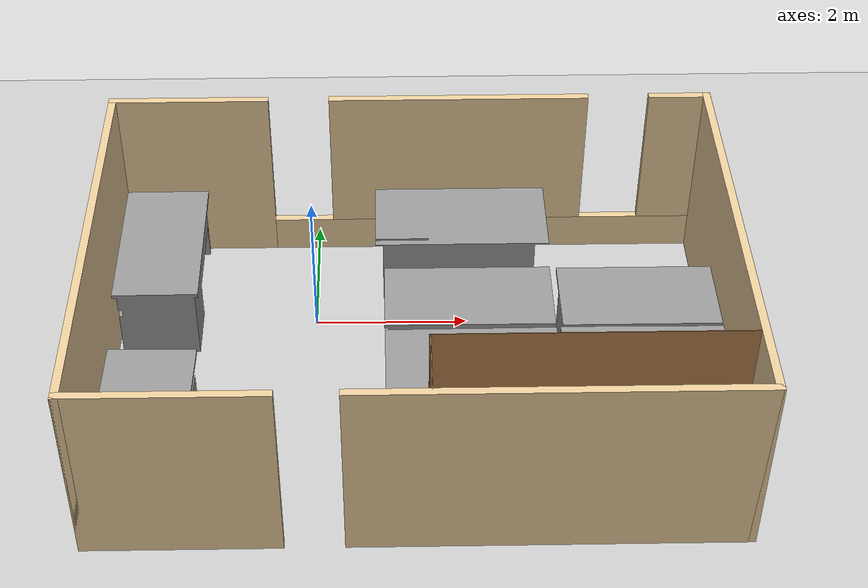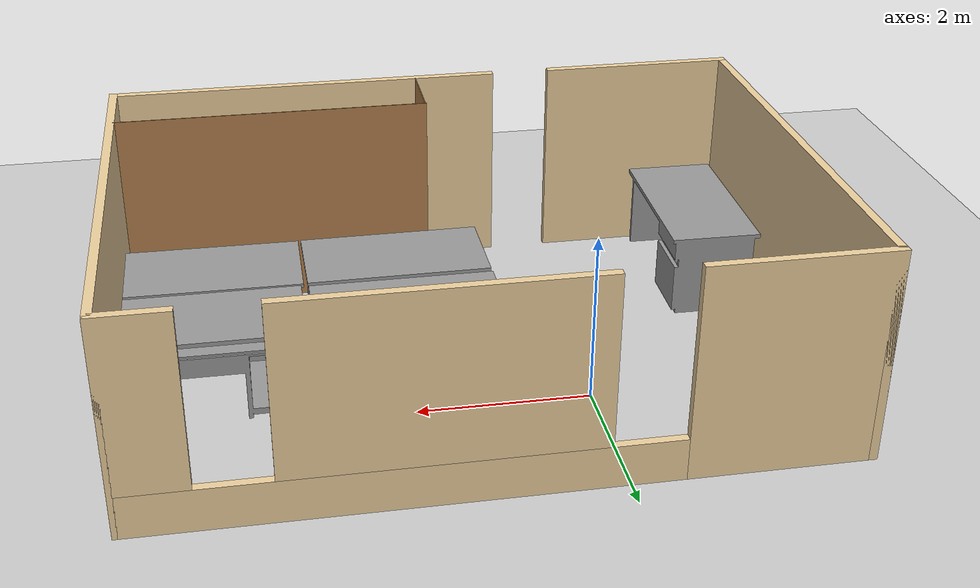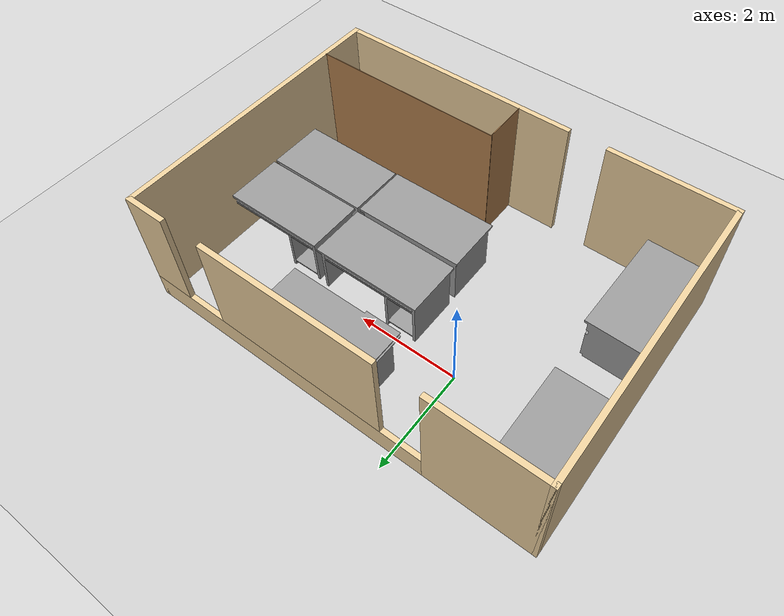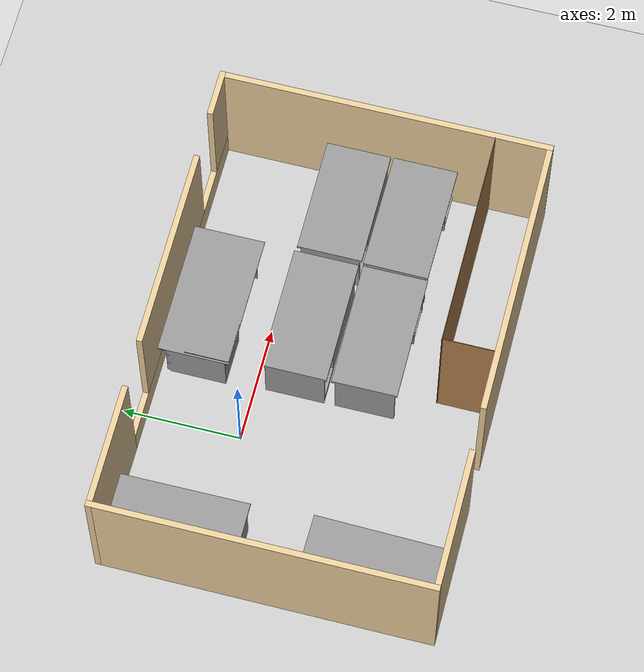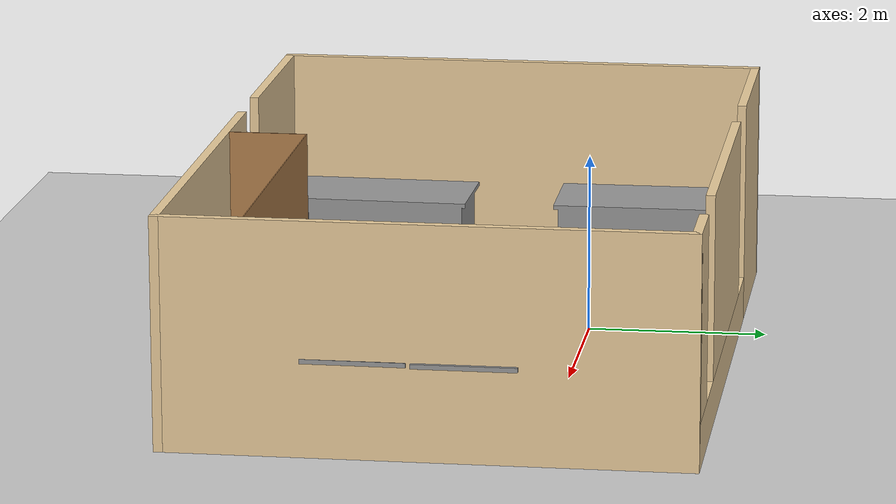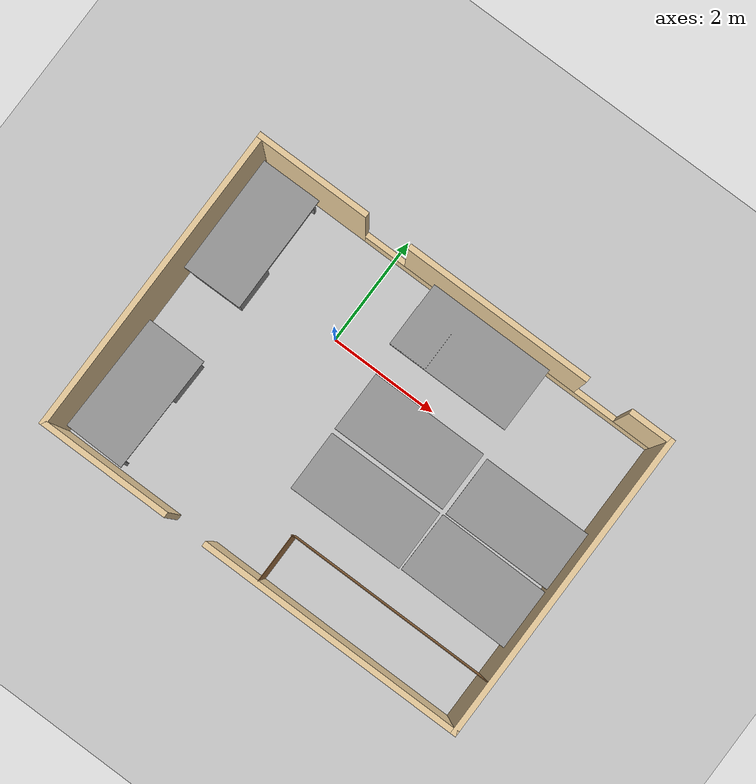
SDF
<sdf version="1.6">
 <world name="default">
  <light name="sun" type="directional">
   <pose>0 0 10 0 -0 0</pose>
   <diffuse>0.8 0.8 0.8 1</diffuse>
   <specular>0.1 0.1 0.1 1</specular>
   <attenuation>
    <range>1000</range>
    <constant>0.9</constant>
    <linear>0.01</linear>
    <quadratic>0.001</quadratic>
   </attenuation>
   <direction>-0.5 0.5 -1</direction>
  </light>
  <model name="ground_plane">
   <static>1</static>
   <link name="link">
    <collision name="collision">
     <geometry><plane><normal>0 0 1</normal><size>100 100</size></plane></geometry>
     <surface><friction><ode><mu>100</mu><mu2>50</mu2></ode></friction></surface>
    </collision>
    <visual name="visual">
     <cast_shadows>0</cast_shadows>
     <geometry><plane><normal>0 0 1</normal><size>100 100</size></plane></geometry>
     <material>
      <script><uri>file://media/materials/scripts/gazebo.material</uri><name>Gazebo/Grey</name></script>
     </material>
    </visual>
   </link>
  </model>
  <gravity>0 0 -9.8</gravity>
  <magnetic_field>6e-06 2.3e-05 -4.2e-05</magnetic_field>
  <atmosphere type="adiabatic"/>
  <physics name="default_physics" default="0" type="ode">
   <max_step_size>0.001</max_step_size>
   <real_time_factor>1</real_time_factor>
   <real_time_update_rate>1000</real_time_update_rate>
  </physics>
  <scene><ambient>0.4 0.4 0.4 1</ambient><background>0.7 0.7 0.7 1</background><shadows>1</shadows></scene>
  <spherical_coordinates>
   <surface_model>EARTH_WGS84</surface_model>
   <latitude_deg>0</latitude_deg>
   <longitude_deg>0</longitude_deg>
   <elevation>0</elevation>
   <heading_deg>0</heading_deg>
  </spherical_coordinates>
  <model name="Room">
   <pose>1.28029 -1.1137 0 0 -0 0</pose>
   <link name="Wall_20">
    <pose>-0 2.765 0 0 -0 0</pose>
    <visual name="Wall_20_Visual_0">
     <pose>-2.925 0 1.25 0 -0 0</pose>
     <geometry><box><size>2.1 0.1 2.5</size></box></geometry>
     <material>
      <script><uri>file://media/materials/scripts/gazebo.material</uri><name>Gazebo/Grey</name></script>
      <ambient>0.921569 0.807843 0.615686 1</ambient>
     </material>
     <meta><layer>0</layer></meta>
    </visual>
    <collision name="Wall_20_Collision_0">
     <geometry><box><size>2.1 0.1 2.5</size></box></geometry>
     <pose>-2.925 0 1.25 0 -0 0</pose>
    </collision>
    <visual name="Wall_20_Visual_1">
     <pose>1.05 0 0.25 0 -0 0</pose>
     <geometry><box><size>5.85 0.1 0.5</size></box></geometry>
     <material>
      <script><uri>file://media/materials/scripts/gazebo.material</uri><name>Gazebo/Grey</name></script>
      <ambient>0.921569 0.807843 0.615686 1</ambient>
     </material>
     <meta><layer>0</layer></meta>
    </visual>
    <collision name="Wall_20_Collision_1">
     <geometry><box><size>5.85 0.1 0.5</size></box></geometry>
     <pose>1.05 0 0.25 0 -0 0</pose>
    </collision>
    <visual name="Wall_20_Visual_2">
     <pose>0.64 0 1.5 0 -0 0</pose>
     <geometry><box><size>3.43 0.1 2</size></box></geometry>
     <material>
      <script><uri>file://media/materials/scripts/gazebo.material</uri><name>Gazebo/Grey</name></script>
      <ambient>0.921569 0.807843 0.615686 1</ambient>
     </material>
     <meta><layer>0</layer></meta>
    </visual>
    <collision name="Wall_20_Collision_2">
     <geometry><box><size>3.43 0.1 2</size></box></geometry>
     <pose>0.64 0 1.5 0 -0 0</pose>
    </collision>
    <visual name="Wall_20_Visual_3">
     <pose>3.565 0 1.5 0 -0 0</pose>
     <geometry><box><size>0.82 0.1 2</size></box></geometry>
     <material>
      <script><uri>file://media/materials/scripts/gazebo.material</uri><name>Gazebo/Grey</name></script>
      <ambient>0.921569 0.807843 0.615686 1</ambient>
     </material>
     <meta><layer>0</layer></meta>
    </visual>
    <collision name="Wall_20_Collision_3">
     <geometry><box><size>0.82 0.1 2</size></box></geometry>
     <pose>3.565 0 1.5 0 -0 0</pose>
    </collision>
   </link>
   <link name="Wall_21">
    <collision name="Wall_21_Collision">
     <geometry><box><size>5.63 0.1 2.5</size></box></geometry>
     <pose>0 0 1.25 0 -0 0</pose>
    </collision>
    <visual name="Wall_21_Visual">
     <pose>0 0 1.25 0 -0 0</pose>
     <geometry><box><size>5.63 0.1 2.5</size></box></geometry>
     <material>
      <script><uri>file://media/materials/scripts/gazebo.material</uri><name>Gazebo/Grey</name></script>
      <ambient>0.921569 0.807843 0.615686 1</ambient>
     </material>
     <meta><layer>0</layer></meta>
    </visual>
    <pose>3.925 0 0 0 -0 -1.5708</pose>
   </link>
   <link name="Wall_23">
    <collision name="Wall_23_Collision">
     <geometry><box><size>5.63 0.1 2.5</size></box></geometry>
     <pose>0 0 1.25 0 -0 0</pose>
    </collision>
    <visual name="Wall_23_Visual">
     <pose>0 0 1.25 0 -0 0</pose>
     <geometry><box><size>5.63 0.1 2.5</size></box></geometry>
     <material>
      <script><uri>file://media/materials/scripts/gazebo.material</uri><name>Gazebo/Grey</name></script>
      <ambient>0.921569 0.807843 0.615686 1</ambient>
     </material>
     <meta><layer>0</layer></meta>
    </visual>
    <pose>-3.925 0 0 0 -0 -1.5708</pose>
   </link>
   <link name="Wall_25">
    <pose>-0 -2.765 0 0 -0 0</pose>
    <visual name="Wall_25_Visual_0">
     <pose>-2.77256 0 1.25 0 -0 0</pose>
     <geometry><box><size>2.40488 0.1 2.5</size></box></geometry>
     <material>
      <script><uri>file://media/materials/scripts/gazebo.material</uri><name>Gazebo/Grey</name></script>
      <ambient>0.921569 0.807843 0.615686 1</ambient>
     </material>
     <meta><layer>0</layer></meta>
    </visual>
    <collision name="Wall_25_Collision_0">
     <geometry><box><size>2.40488 0.1 2.5</size></box></geometry>
     <pose>-2.77256 0 1.25 0 -0 0</pose>
    </collision>
    <visual name="Wall_25_Visual_1">
     <pose>1.56244 0 1.25 0 -0 0</pose>
     <geometry><box><size>4.82512 0.1 2.5</size></box></geometry>
     <material>
      <script><uri>file://media/materials/scripts/gazebo.material</uri><name>Gazebo/Grey</name></script>
      <ambient>0.921569 0.807843 0.615686 1</ambient>
     </material>
     <meta><layer>0</layer></meta>
    </visual>
    <collision name="Wall_25_Collision_1">
     <geometry><box><size>4.82512 0.1 2.5</size></box></geometry>
     <pose>1.56244 0 1.25 0 -0 0</pose>
    </collision>
   </link>
   <link name="Wall_45">
    <collision name="Wall_45_Collision">
     <geometry><box><size>3.76 0.01 2.5</size></box></geometry>
     <pose>0 0 1.25 0 -0 0</pose>
    </collision>
    <visual name="Wall_45_Visual">
     <pose>0 0 1.25 0 -0 0</pose>
     <geometry><box><size>3.76 0.01 2.5</size></box></geometry>
     <material>
      <script><uri>file://media/materials/scripts/gazebo.material</uri><name>Gazebo/Wood</name></script>
      <ambient>1 1 1 1</ambient>
     </material>
     <meta><layer>0</layer></meta>
    </visual>
    <pose>2.02 -1.857 0 0 -0 3.14159</pose>
   </link>
   <link name="Wall_48">
    <collision name="Wall_48_Collision">
     <geometry><box><size>0.87 0.01 2.5</size></box></geometry>
     <pose>0 0 1.25 0 -0 0</pose>
    </collision>
    <visual name="Wall_48_Visual">
     <pose>0 0 1.25 0 -0 0</pose>
     <geometry><box><size>0.87 0.01 2.5</size></box></geometry>
     <material>
      <script><uri>file://media/materials/scripts/gazebo.material</uri><name>Gazebo/Wood</name></script>
      <ambient>1 1 1 1</ambient>
     </material>
     <meta><layer>0</layer></meta>
    </visual>
    <pose>0.156 -2.305 0 0 -0 1.5708</pose>
   </link>
   <static>1</static>
  </model>
  <model name="table23">
   <link name="link_0">
    <inertial>
     <mass>1</mass>
     <inertia>
      <ixx>0.166667</ixx>
      <ixy>0</ixy>
      <ixz>0</ixz>
      <iyy>0.166667</iyy>
      <iyz>0</iyz>
      <izz>0.166667</izz>
     </inertia>
    </inertial>
    <pose>-4e-06 -0 0 0 -0 0</pose>
    <visual name="visual">
     <geometry>
      <mesh><uri>model://table_with_door/meshes/table_with_door.stl</uri><scale>0.05 0.05 0.05</scale></mesh>
     </geometry>
     <material>
      <lighting>1</lighting>
      <script><uri>file://media/materials/scripts/gazebo.material</uri><name>Gazebo/Grey</name></script>
     </material>
    </visual>
    <collision name="collision">
     <geometry>
      <mesh><uri>model://table_with_door/meshes/table_with_door.stl</uri><scale>0.05 0.05 0.05</scale></mesh>
     </geometry>
     <surface>
      <friction>
       <ode><mu>1</mu><mu2>1</mu2><fdir1>0 0 0</fdir1><slip1>0</slip1><slip2>0</slip2></ode>
       <torsional>
        <coefficient>1</coefficient>
        <patch_radius>0</patch_radius>
        <surface_radius>0</surface_radius>
        <use_patch_radius>1</use_patch_radius>
        <ode><slip>0</slip></ode>
       </torsional>
      </friction>
      <bounce><restitution_coefficient>0</restitution_coefficient><threshold>1e+06</threshold></bounce>
      <contact>
       <collide_without_contact>0</collide_without_contact>
       <collide_without_contact_bitmask>1</collide_without_contact_bitmask>
       <collide_bitmask>1</collide_bitmask>
       <ode>
        <soft_cfm>0</soft_cfm>
        <soft_erp>0.2</soft_erp>
        <kp>1e+13</kp>
        <kd>1</kd>
        <max_vel>0.01</max_vel>
        <min_depth>0</min_depth>
       </ode>
       <bullet>
        <split_impulse>1</split_impulse>
        <split_impulse_penetration_threshold>-0.01</split_impulse_penetration_threshold>
        <soft_cfm>0</soft_cfm>
        <soft_erp>0.2</soft_erp>
        <kp>1e+13</kp>
        <kd>1</kd>
       </bullet>
      </contact>
     </surface>
    </collision>
   </link>
   <static>0</static>
   <pose>-2.45438 -1.64797 0 0 0 -1.58818</pose>
  </model>
  <model name="table23_0">
   <link name="link_0">
    <inertial>
     <mass>1</mass>
     <inertia>
      <ixx>0.166667</ixx>
      <ixy>0</ixy>
      <ixz>0</ixz>
      <iyy>0.166667</iyy>
      <iyz>0</iyz>
      <izz>0.166667</izz>
     </inertia>
    </inertial>
    <pose>-4e-06 -0 0 0 -0 0</pose>
    <visual name="visual">
     <geometry>
      <mesh><uri>model://table_with_door/meshes/table_with_door.stl</uri><scale>0.05 0.05 0.05</scale></mesh>
     </geometry>
     <material>
      <lighting>1</lighting>
      <script><uri>file://media/materials/scripts/gazebo.material</uri><name>Gazebo/Grey</name></script>
     </material>
    </visual>
    <collision name="collision">
     <geometry>
      <mesh><uri>model://table_with_door/meshes/table_with_door.stl</uri><scale>0.05 0.05 0.05</scale></mesh>
     </geometry>
     <surface>
      <friction>
       <ode><mu>1</mu><mu2>1</mu2><fdir1>0 0 0</fdir1><slip1>0</slip1><slip2>0</slip2></ode>
       <torsional>
        <coefficient>1</coefficient>
        <patch_radius>0</patch_radius>
        <surface_radius>0</surface_radius>
        <use_patch_radius>1</use_patch_radius>
        <ode><slip>0</slip></ode>
       </torsional>
      </friction>
      <bounce><restitution_coefficient>0</restitution_coefficient><threshold>1e+06</threshold></bounce>
      <contact>
       <collide_without_contact>0</collide_without_contact>
       <collide_without_contact_bitmask>1</collide_without_contact_bitmask>
       <collide_bitmask>1</collide_bitmask>
       <ode>
        <soft_cfm>0</soft_cfm>
        <soft_erp>0.2</soft_erp>
        <kp>1e+13</kp>
        <kd>1</kd>
        <max_vel>0.01</max_vel>
        <min_depth>0</min_depth>
       </ode>
       <bullet>
        <split_impulse>1</split_impulse>
        <split_impulse_penetration_threshold>-0.01</split_impulse_penetration_threshold>
        <soft_cfm>0</soft_cfm>
        <soft_erp>0.2</soft_erp>
        <kp>1e+13</kp>
        <kd>1</kd>
       </bullet>
      </contact>
     </surface>
    </collision>
   </link>
   <static>0</static>
   <pose>-1.52426 -0.539747 0 0 -0 1.57674</pose>
  </model>
  <model name="table">
   <link name="link_0">
    <inertial>
     <mass>1</mass>
     <inertia>
      <ixx>0.166667</ixx>
      <ixy>0</ixy>
      <ixz>0</ixz>
      <iyy>0.166667</iyy>
      <iyz>0</iyz>
      <izz>0.166667</izz>
     </inertia>
    </inertial>
    <pose>5e-06 0 0 0 -0 0</pose>
    <visual name="visual">
     <geometry><mesh><uri>model://table_1/meshes/table_1.stl</uri><scale>0.05 0.05 0.05</scale></mesh></geometry>
     <material>
      <lighting>1</lighting>
      <script><uri>file://media/materials/scripts/gazebo.material</uri><name>Gazebo/Grey</name></script>
     </material>
    </visual>
    <collision name="collision">
     <geometry><mesh><uri>model://table_1/meshes/table_1.stl</uri><scale>0.05 0.05 0.05</scale></mesh></geometry>
     <surface>
      <friction>
       <ode><mu>1</mu><mu2>1</mu2><fdir1>0 0 0</fdir1><slip1>0</slip1><slip2>0</slip2></ode>
       <torsional>
        <coefficient>1</coefficient>
        <patch_radius>0</patch_radius>
        <surface_radius>0</surface_radius>
        <use_patch_radius>1</use_patch_radius>
        <ode><slip>0</slip></ode>
       </torsional>
      </friction>
      <bounce><restitution_coefficient>0</restitution_coefficient><threshold>1e+06</threshold></bounce>
      <contact>
       <collide_without_contact>0</collide_without_contact>
       <collide_without_contact_bitmask>1</collide_without_contact_bitmask>
       <collide_bitmask>1</collide_bitmask>
       <ode>
        <soft_cfm>0</soft_cfm>
        <soft_erp>0.2</soft_erp>
        <kp>1e+13</kp>
        <kd>1</kd>
        <max_vel>0.01</max_vel>
        <min_depth>0</min_depth>
       </ode>
       <bullet>
        <split_impulse>1</split_impulse>
        <split_impulse_penetration_threshold>-0.01</split_impulse_penetration_threshold>
        <soft_cfm>0</soft_cfm>
        <soft_erp>0.2</soft_erp>
        <kp>1e+13</kp>
        <kd>1</kd>
       </bullet>
      </contact>
     </surface>
    </collision>
   </link>
   <static>0</static>
   <pose>0.899329 0.491861 0 0 -0 0</pose>
  </model>
  <model name="table_2_0">
   <link name="link_0">
    <inertial>
     <mass>1</mass>
     <inertia>
      <ixx>0.166667</ixx>
      <ixy>0</ixy>
      <ixz>0</ixz>
      <iyy>0.166667</iyy>
      <iyz>0</iyz>
      <izz>0.166667</izz>
     </inertia>
    </inertial>
    <pose>4e-06 0 0 0 -0 0</pose>
    <visual name="visual">
     <geometry><mesh><uri>model://table_2/meshes/table_2.stl</uri><scale>0.05 0.05 0.05</scale></mesh></geometry>
     <material>
      <lighting>1</lighting>
      <script><uri>file://media/materials/scripts/gazebo.material</uri><name>Gazebo/Grey</name></script>
     </material>
    </visual>
    <collision name="collision">
     <geometry><mesh><uri>model://table_2/meshes/table_2.stl</uri><scale>0.05 0.05 0.05</scale></mesh></geometry>
     <surface>
      <friction>
       <ode><mu>1</mu><mu2>1</mu2><fdir1>0 0 0</fdir1><slip1>0</slip1><slip2>0</slip2></ode>
       <torsional>
        <coefficient>1</coefficient>
        <patch_radius>0</patch_radius>
        <surface_radius>0</surface_radius>
        <use_patch_radius>1</use_patch_radius>
        <ode><slip>0</slip></ode>
       </torsional>
      </friction>
      <bounce><restitution_coefficient>0</restitution_coefficient><threshold>1e+06</threshold></bounce>
      <contact>
       <collide_without_contact>0</collide_without_contact>
       <collide_without_contact_bitmask>1</collide_without_contact_bitmask>
       <collide_bitmask>1</collide_bitmask>
       <ode>
        <soft_cfm>0</soft_cfm>
        <soft_erp>0.2</soft_erp>
        <kp>1e+13</kp>
        <kd>1</kd>
        <max_vel>0.01</max_vel>
        <min_depth>0</min_depth>
       </ode>
       <bullet>
        <split_impulse>1</split_impulse>
        <split_impulse_penetration_threshold>-0.01</split_impulse_penetration_threshold>
        <soft_cfm>0</soft_cfm>
        <soft_erp>0.2</soft_erp>
        <kp>1e+13</kp>
        <kd>1</kd>
       </bullet>
      </contact>
     </surface>
    </collision>
   </link>
   <static>0</static>
   <pose>0.96241 -1.17069 0 0 -0 0</pose>
  </model>
  <model name="table_2_1">
   <link name="link_0">
    <inertial>
     <mass>1</mass>
     <inertia>
      <ixx>0.166667</ixx>
      <ixy>0</ixy>
      <ixz>0</ixz>
      <iyy>0.166667</iyy>
      <iyz>0</iyz>
      <izz>0.166667</izz>
     </inertia>
    </inertial>
    <pose>4e-06 0 0 0 -0 0</pose>
    <visual name="visual">
     <geometry><mesh><uri>model://table_2/meshes/table_2.stl</uri><scale>0.05 0.05 0.05</scale></mesh></geometry>
     <material>
      <lighting>1</lighting>
      <script><uri>file://media/materials/scripts/gazebo.material</uri><name>Gazebo/Grey</name></script>
     </material>
    </visual>
    <collision name="collision">
     <geometry><mesh><uri>model://table_2/meshes/table_2.stl</uri><scale>0.05 0.05 0.05</scale></mesh></geometry>
     <surface>
      <friction>
       <ode><mu>1</mu><mu2>1</mu2><fdir1>0 0 0</fdir1><slip1>0</slip1><slip2>0</slip2></ode>
       <torsional>
        <coefficient>1</coefficient>
        <patch_radius>0</patch_radius>
        <surface_radius>0</surface_radius>
        <use_patch_radius>1</use_patch_radius>
        <ode><slip>0</slip></ode>
       </torsional>
      </friction>
      <bounce><restitution_coefficient>0</restitution_coefficient><threshold>1e+06</threshold></bounce>
      <contact>
       <collide_without_contact>0</collide_without_contact>
       <collide_without_contact_bitmask>1</collide_without_contact_bitmask>
       <collide_bitmask>1</collide_bitmask>
       <ode>
        <soft_cfm>0</soft_cfm>
        <soft_erp>0.2</soft_erp>
        <kp>1e+13</kp>
        <kd>1</kd>
        <max_vel>0.01</max_vel>
        <min_depth>0</min_depth>
       </ode>
       <bullet>
        <split_impulse>1</split_impulse>
        <split_impulse_penetration_threshold>-0.01</split_impulse_penetration_threshold>
        <soft_cfm>0</soft_cfm>
        <soft_erp>0.2</soft_erp>
        <kp>1e+13</kp>
        <kd>1</kd>
       </bullet>
      </contact>
     </surface>
    </collision>
   </link>
   <static>0</static>
   <pose>3.19688 -1.19759 0 0 -0 0</pose>
  </model>
  <model name="table_2_2">
   <link name="link_0">
    <inertial>
     <mass>1</mass>
     <inertia>
      <ixx>0.166667</ixx>
      <ixy>0</ixy>
      <ixz>0</ixz>
      <iyy>0.166667</iyy>
      <iyz>0</iyz>
      <izz>0.166667</izz>
     </inertia>
    </inertial>
    <pose>4e-06 0 0 0 -0 0</pose>
    <visual name="visual">
     <geometry><mesh><uri>model://table_2/meshes/table_2.stl</uri><scale>0.05 0.05 0.05</scale></mesh></geometry>
     <material>
      <lighting>1</lighting>
      <script><uri>file://media/materials/scripts/gazebo.material</uri><name>Gazebo/Grey</name></script>
     </material>
    </visual>
    <collision name="collision">
     <geometry><mesh><uri>model://table_2/meshes/table_2.stl</uri><scale>0.05 0.05 0.05</scale></mesh></geometry>
     <surface>
      <friction>
       <ode><mu>1</mu><mu2>1</mu2><fdir1>0 0 0</fdir1><slip1>0</slip1><slip2>0</slip2></ode>
       <torsional>
        <coefficient>1</coefficient>
        <patch_radius>0</patch_radius>
        <surface_radius>0</surface_radius>
        <use_patch_radius>1</use_patch_radius>
        <ode><slip>0</slip></ode>
       </torsional>
      </friction>
      <bounce><restitution_coefficient>0</restitution_coefficient><threshold>1e+06</threshold></bounce>
      <contact>
       <collide_without_contact>0</collide_without_contact>
       <collide_without_contact_bitmask>1</collide_without_contact_bitmask>
       <collide_bitmask>1</collide_bitmask>
       <ode>
        <soft_cfm>0</soft_cfm>
        <soft_erp>0.2</soft_erp>
        <kp>1e+13</kp>
        <kd>1</kd>
        <max_vel>0.01</max_vel>
        <min_depth>0</min_depth>
       </ode>
       <bullet>
        <split_impulse>1</split_impulse>
        <split_impulse_penetration_threshold>-0.01</split_impulse_penetration_threshold>
        <soft_cfm>0</soft_cfm>
        <soft_erp>0.2</soft_erp>
        <kp>1e+13</kp>
        <kd>1</kd>
       </bullet>
      </contact>
     </surface>
    </collision>
   </link>
   <static>0</static>
   <pose>3.01775 -1.34142 0 0 0 -3.13724</pose>
  </model>
  <model name="table_2_3">
   <link name="link_0">
    <inertial>
     <mass>1</mass>
     <inertia>
      <ixx>0.166667</ixx>
      <ixy>0</ixy>
      <ixz>0</ixz>
      <iyy>0.166667</iyy>
      <iyz>0</iyz>
      <izz>0.166667</izz>
     </inertia>
    </inertial>
    <pose>4e-06 0 0 0 -0 0</pose>
    <visual name="visual">
     <geometry><mesh><uri>model://table_2/meshes/table_2.stl</uri><scale>0.05 0.05 0.05</scale></mesh></geometry>
     <material>
      <lighting>1</lighting>
      <script><uri>file://media/materials/scripts/gazebo.material</uri><name>Gazebo/Grey</name></script>
     </material>
    </visual>
    <collision name="collision">
     <geometry><mesh><uri>model://table_2/meshes/table_2.stl</uri><scale>0.05 0.05 0.05</scale></mesh></geometry>
     <surface>
      <friction>
       <ode><mu>1</mu><mu2>1</mu2><fdir1>0 0 0</fdir1><slip1>0</slip1><slip2>0</slip2></ode>
       <torsional>
        <coefficient>1</coefficient>
        <patch_radius>0</patch_radius>
        <surface_radius>0</surface_radius>
        <use_patch_radius>1</use_patch_radius>
        <ode><slip>0</slip></ode>
       </torsional>
      </friction>
      <bounce><restitution_coefficient>0</restitution_coefficient><threshold>1e+06</threshold></bounce>
      <contact>
       <collide_without_contact>0</collide_without_contact>
       <collide_without_contact_bitmask>1</collide_without_contact_bitmask>
       <collide_bitmask>1</collide_bitmask>
       <ode>
        <soft_cfm>0</soft_cfm>
        <soft_erp>0.2</soft_erp>
        <kp>1e+13</kp>
        <kd>1</kd>
        <max_vel>0.01</max_vel>
        <min_depth>0</min_depth>
       </ode>
       <bullet>
        <split_impulse>1</split_impulse>
        <split_impulse_penetration_threshold>-0.01</split_impulse_penetration_threshold>
        <soft_cfm>0</soft_cfm>
        <soft_erp>0.2</soft_erp>
        <kp>1e+13</kp>
        <kd>1</kd>
       </bullet>
      </contact>
     </surface>
    </collision>
   </link>
   <static>0</static>
   <pose>5.21482 -1.34886 0 0 -0 3.13261</pose>
  </model>
 </world>
</sdf>
